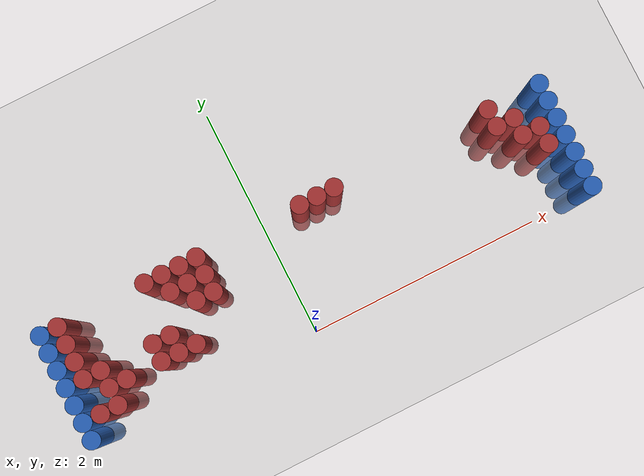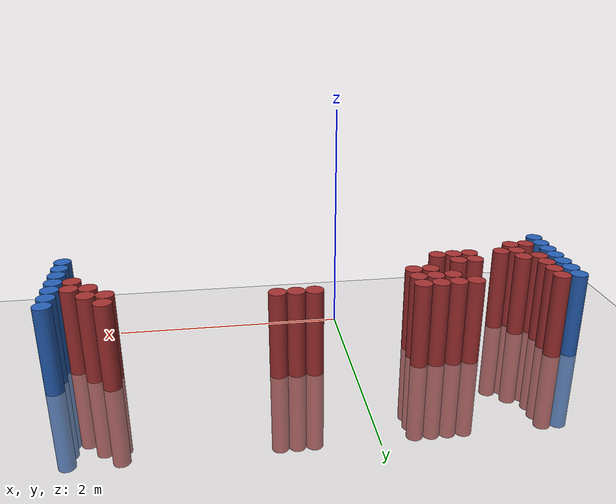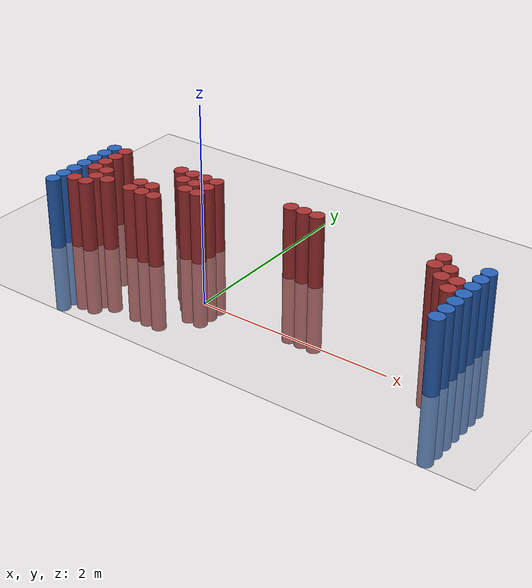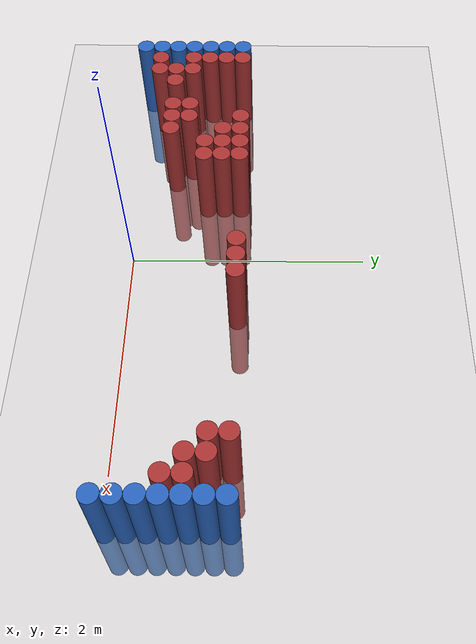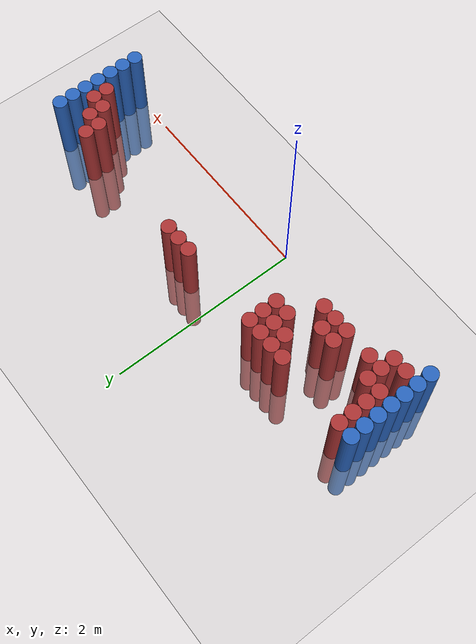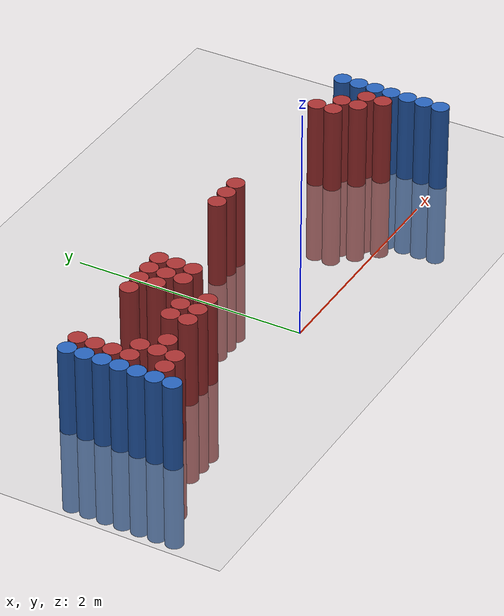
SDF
<sdf version="1.6">
 <world name="default">
  <model name="ground_plane">
   <static>1</static>
   <link name="link">
    <collision name="collision">
     <geometry><plane><normal>0 0 1</normal><size>100 100</size></plane></geometry>
     <surface><friction><ode><mu>100</mu><mu2>50</mu2></ode></friction></surface>
    </collision>
    <visual name="visual">
     <cast_shadows>0</cast_shadows>
     <geometry><plane><normal>0 0 1</normal><size>100 100</size></plane></geometry>
     <material>
      <script><uri>file://media/materials/scripts/gazebo.material</uri><name>Gazebo/Grey</name></script>
     </material>
    </visual>
   </link>
  </model>
  <model name="unit_cylinder_94">
   <static>1</static>
   <pose>2.425000 0.025000 0.000000 0.000000 0.000000 0.000000</pose>
   <link name="link">
    <inertial>
     <mass>1</mass>
     <inertia><ixx>0.145833</ixx><ixy>0</ixy><ixz>0</ixz><iyy>0.145833</iyy><iyz>0</iyz><izz>0.125</izz></inertia>
    </inertial>
    <collision name="collision">
     <geometry><cylinder><radius>0.075000</radius><length>1.5</length></cylinder></geometry>
    </collision>
    <visual name="visual">
     <geometry><cylinder><radius>0.075000</radius><length>1.5</length></cylinder></geometry>
     <material>
      <ambient>0.152000 0.379000 0.720000 1</ambient>
      <diffuse>0.152000 0.379000 0.720000 1</diffuse>
     </material>
     <material>
      <script><name>Gazebo/Grey</name><uri>file://media/materials/scripts/gazebo.material</uri></script>
     </material>
    </visual>
   </link>
  </model>
  <model name="unit_cylinder_95">
   <static>1</static>
   <pose>-1.925000 0.025000 0.000000 0.000000 0.000000 0.000000</pose>
   <link name="link">
    <inertial>
     <mass>1</mass>
     <inertia><ixx>0.145833</ixx><ixy>0</ixy><ixz>0</ixz><iyy>0.145833</iyy><iyz>0</iyz><izz>0.125</izz></inertia>
    </inertial>
    <collision name="collision">
     <geometry><cylinder><radius>0.075000</radius><length>1.5</length></cylinder></geometry>
    </collision>
    <visual name="visual">
     <geometry><cylinder><radius>0.075000</radius><length>1.5</length></cylinder></geometry>
     <material>
      <ambient>0.152000 0.379000 0.720000 1</ambient>
      <diffuse>0.152000 0.379000 0.720000 1</diffuse>
     </material>
     <material>
      <script><name>Gazebo/Grey</name><uri>file://media/materials/scripts/gazebo.material</uri></script>
     </material>
    </visual>
   </link>
  </model>
  <model name="unit_cylinder_96">
   <static>1</static>
   <pose>-1.925000 0.175000 0.000000 0.000000 0.000000 0.000000</pose>
   <link name="link">
    <inertial>
     <mass>1</mass>
     <inertia><ixx>0.145833</ixx><ixy>0</ixy><ixz>0</ixz><iyy>0.145833</iyy><iyz>0</iyz><izz>0.125</izz></inertia>
    </inertial>
    <collision name="collision">
     <geometry><cylinder><radius>0.075000</radius><length>1.5</length></cylinder></geometry>
    </collision>
    <visual name="visual">
     <geometry><cylinder><radius>0.075000</radius><length>1.5</length></cylinder></geometry>
     <material>
      <ambient>0.152000 0.379000 0.720000 1</ambient>
      <diffuse>0.152000 0.379000 0.720000 1</diffuse>
     </material>
     <material>
      <script><name>Gazebo/Grey</name><uri>file://media/materials/scripts/gazebo.material</uri></script>
     </material>
    </visual>
   </link>
  </model>
  <model name="unit_cylinder_97">
   <static>1</static>
   <pose>-1.925000 0.325000 0.000000 0.000000 0.000000 0.000000</pose>
   <link name="link">
    <inertial>
     <mass>1</mass>
     <inertia><ixx>0.145833</ixx><ixy>0</ixy><ixz>0</ixz><iyy>0.145833</iyy><iyz>0</iyz><izz>0.125</izz></inertia>
    </inertial>
    <collision name="collision">
     <geometry><cylinder><radius>0.075000</radius><length>1.5</length></cylinder></geometry>
    </collision>
    <visual name="visual">
     <geometry><cylinder><radius>0.075000</radius><length>1.5</length></cylinder></geometry>
     <material>
      <ambient>0.152000 0.379000 0.720000 1</ambient>
      <diffuse>0.152000 0.379000 0.720000 1</diffuse>
     </material>
     <material>
      <script><name>Gazebo/Grey</name><uri>file://media/materials/scripts/gazebo.material</uri></script>
     </material>
    </visual>
   </link>
  </model>
  <model name="unit_cylinder_98">
   <static>1</static>
   <pose>-1.925000 0.475000 0.000000 0.000000 0.000000 0.000000</pose>
   <link name="link">
    <inertial>
     <mass>1</mass>
     <inertia><ixx>0.145833</ixx><ixy>0</ixy><ixz>0</ixz><iyy>0.145833</iyy><iyz>0</iyz><izz>0.125</izz></inertia>
    </inertial>
    <collision name="collision">
     <geometry><cylinder><radius>0.075000</radius><length>1.5</length></cylinder></geometry>
    </collision>
    <visual name="visual">
     <geometry><cylinder><radius>0.075000</radius><length>1.5</length></cylinder></geometry>
     <material>
      <ambient>0.152000 0.379000 0.720000 1</ambient>
      <diffuse>0.152000 0.379000 0.720000 1</diffuse>
     </material>
     <material>
      <script><name>Gazebo/Grey</name><uri>file://media/materials/scripts/gazebo.material</uri></script>
     </material>
    </visual>
   </link>
  </model>
  <model name="unit_cylinder_99">
   <static>1</static>
   <pose>-1.925000 0.625000 0.000000 0.000000 0.000000 0.000000</pose>
   <link name="link">
    <inertial>
     <mass>1</mass>
     <inertia><ixx>0.145833</ixx><ixy>0</ixy><ixz>0</ixz><iyy>0.145833</iyy><iyz>0</iyz><izz>0.125</izz></inertia>
    </inertial>
    <collision name="collision">
     <geometry><cylinder><radius>0.075000</radius><length>1.5</length></cylinder></geometry>
    </collision>
    <visual name="visual">
     <geometry><cylinder><radius>0.075000</radius><length>1.5</length></cylinder></geometry>
     <material>
      <ambient>0.152000 0.379000 0.720000 1</ambient>
      <diffuse>0.152000 0.379000 0.720000 1</diffuse>
     </material>
     <material>
      <script><name>Gazebo/Grey</name><uri>file://media/materials/scripts/gazebo.material</uri></script>
     </material>
    </visual>
   </link>
  </model>
  <model name="unit_cylinder_100">
   <static>1</static>
   <pose>-1.925000 0.775000 0.000000 0.000000 0.000000 0.000000</pose>
   <link name="link">
    <inertial>
     <mass>1</mass>
     <inertia><ixx>0.145833</ixx><ixy>0</ixy><ixz>0</ixz><iyy>0.145833</iyy><iyz>0</iyz><izz>0.125</izz></inertia>
    </inertial>
    <collision name="collision">
     <geometry><cylinder><radius>0.075000</radius><length>1.5</length></cylinder></geometry>
    </collision>
    <visual name="visual">
     <geometry><cylinder><radius>0.075000</radius><length>1.5</length></cylinder></geometry>
     <material>
      <ambient>0.152000 0.379000 0.720000 1</ambient>
      <diffuse>0.152000 0.379000 0.720000 1</diffuse>
     </material>
     <material>
      <script><name>Gazebo/Grey</name><uri>file://media/materials/scripts/gazebo.material</uri></script>
     </material>
    </visual>
   </link>
  </model>
  <model name="unit_cylinder_101">
   <static>1</static>
   <pose>-1.925000 0.925000 0.000000 0.000000 0.000000 0.000000</pose>
   <link name="link">
    <inertial>
     <mass>1</mass>
     <inertia><ixx>0.145833</ixx><ixy>0</ixy><ixz>0</ixz><iyy>0.145833</iyy><iyz>0</iyz><izz>0.125</izz></inertia>
    </inertial>
    <collision name="collision">
     <geometry><cylinder><radius>0.075000</radius><length>1.5</length></cylinder></geometry>
    </collision>
    <visual name="visual">
     <geometry><cylinder><radius>0.075000</radius><length>1.5</length></cylinder></geometry>
     <material>
      <ambient>0.152000 0.379000 0.720000 1</ambient>
      <diffuse>0.152000 0.379000 0.720000 1</diffuse>
     </material>
     <material>
      <script><name>Gazebo/Grey</name><uri>file://media/materials/scripts/gazebo.material</uri></script>
     </material>
    </visual>
   </link>
  </model>
  <model name="unit_cylinder_126">
   <static>1</static>
   <pose>-1.775000 0.175000 0.000000 0.000000 0.000000 0.000000</pose>
   <link name="link">
    <inertial>
     <mass>1</mass>
     <inertia><ixx>0.145833</ixx><ixy>0</ixy><ixz>0</ixz><iyy>0.145833</iyy><iyz>0</iyz><izz>0.125</izz></inertia>
    </inertial>
    <collision name="collision">
     <geometry><cylinder><radius>0.075000</radius><length>1.5</length></cylinder></geometry>
    </collision>
    <visual name="visual">
     <geometry><cylinder><radius>0.075000</radius><length>1.5</length></cylinder></geometry>
     <material>
      <ambient>0.648000 0.192000 0.192000 1</ambient>
      <diffuse>0.648000 0.192000 0.192000 1</diffuse>
     </material>
     <material>
      <script><name>Gazebo/Grey</name><uri>file://media/materials/scripts/gazebo.material</uri></script>
     </material>
    </visual>
   </link>
  </model>
  <model name="unit_cylinder_127">
   <static>1</static>
   <pose>-1.775000 0.475000 0.000000 0.000000 0.000000 0.000000</pose>
   <link name="link">
    <inertial>
     <mass>1</mass>
     <inertia><ixx>0.145833</ixx><ixy>0</ixy><ixz>0</ixz><iyy>0.145833</iyy><iyz>0</iyz><izz>0.125</izz></inertia>
    </inertial>
    <collision name="collision">
     <geometry><cylinder><radius>0.075000</radius><length>1.5</length></cylinder></geometry>
    </collision>
    <visual name="visual">
     <geometry><cylinder><radius>0.075000</radius><length>1.5</length></cylinder></geometry>
     <material>
      <ambient>0.648000 0.192000 0.192000 1</ambient>
      <diffuse>0.648000 0.192000 0.192000 1</diffuse>
     </material>
     <material>
      <script><name>Gazebo/Grey</name><uri>file://media/materials/scripts/gazebo.material</uri></script>
     </material>
    </visual>
   </link>
  </model>
  <model name="unit_cylinder_128">
   <static>1</static>
   <pose>-1.775000 0.625000 0.000000 0.000000 0.000000 0.000000</pose>
   <link name="link">
    <inertial>
     <mass>1</mass>
     <inertia><ixx>0.145833</ixx><ixy>0</ixy><ixz>0</ixz><iyy>0.145833</iyy><iyz>0</iyz><izz>0.125</izz></inertia>
    </inertial>
    <collision name="collision">
     <geometry><cylinder><radius>0.075000</radius><length>1.5</length></cylinder></geometry>
    </collision>
    <visual name="visual">
     <geometry><cylinder><radius>0.075000</radius><length>1.5</length></cylinder></geometry>
     <material>
      <ambient>0.648000 0.192000 0.192000 1</ambient>
      <diffuse>0.648000 0.192000 0.192000 1</diffuse>
     </material>
     <material>
      <script><name>Gazebo/Grey</name><uri>file://media/materials/scripts/gazebo.material</uri></script>
     </material>
    </visual>
   </link>
  </model>
  <model name="unit_cylinder_129">
   <static>1</static>
   <pose>-1.775000 0.775000 0.000000 0.000000 0.000000 0.000000</pose>
   <link name="link">
    <inertial>
     <mass>1</mass>
     <inertia><ixx>0.145833</ixx><ixy>0</ixy><ixz>0</ixz><iyy>0.145833</iyy><iyz>0</iyz><izz>0.125</izz></inertia>
    </inertial>
    <collision name="collision">
     <geometry><cylinder><radius>0.075000</radius><length>1.5</length></cylinder></geometry>
    </collision>
    <visual name="visual">
     <geometry><cylinder><radius>0.075000</radius><length>1.5</length></cylinder></geometry>
     <material>
      <ambient>0.648000 0.192000 0.192000 1</ambient>
      <diffuse>0.648000 0.192000 0.192000 1</diffuse>
     </material>
     <material>
      <script><name>Gazebo/Grey</name><uri>file://media/materials/scripts/gazebo.material</uri></script>
     </material>
    </visual>
   </link>
  </model>
  <model name="unit_cylinder_130">
   <static>1</static>
   <pose>-1.775000 0.925000 0.000000 0.000000 0.000000 0.000000</pose>
   <link name="link">
    <inertial>
     <mass>1</mass>
     <inertia><ixx>0.145833</ixx><ixy>0</ixy><ixz>0</ixz><iyy>0.145833</iyy><iyz>0</iyz><izz>0.125</izz></inertia>
    </inertial>
    <collision name="collision">
     <geometry><cylinder><radius>0.075000</radius><length>1.5</length></cylinder></geometry>
    </collision>
    <visual name="visual">
     <geometry><cylinder><radius>0.075000</radius><length>1.5</length></cylinder></geometry>
     <material>
      <ambient>0.648000 0.192000 0.192000 1</ambient>
      <diffuse>0.648000 0.192000 0.192000 1</diffuse>
     </material>
     <material>
      <script><name>Gazebo/Grey</name><uri>file://media/materials/scripts/gazebo.material</uri></script>
     </material>
    </visual>
   </link>
  </model>
  <model name="unit_cylinder_143">
   <static>1</static>
   <pose>-1.625000 0.175000 0.000000 0.000000 0.000000 0.000000</pose>
   <link name="link">
    <inertial>
     <mass>1</mass>
     <inertia><ixx>0.145833</ixx><ixy>0</ixy><ixz>0</ixz><iyy>0.145833</iyy><iyz>0</iyz><izz>0.125</izz></inertia>
    </inertial>
    <collision name="collision">
     <geometry><cylinder><radius>0.075000</radius><length>1.5</length></cylinder></geometry>
    </collision>
    <visual name="visual">
     <geometry><cylinder><radius>0.075000</radius><length>1.5</length></cylinder></geometry>
     <material>
      <ambient>0.648000 0.192000 0.192000 1</ambient>
      <diffuse>0.648000 0.192000 0.192000 1</diffuse>
     </material>
     <material>
      <script><name>Gazebo/Grey</name><uri>file://media/materials/scripts/gazebo.material</uri></script>
     </material>
    </visual>
   </link>
  </model>
  <model name="unit_cylinder_144">
   <static>1</static>
   <pose>-1.625000 0.325000 0.000000 0.000000 0.000000 0.000000</pose>
   <link name="link">
    <inertial>
     <mass>1</mass>
     <inertia><ixx>0.145833</ixx><ixy>0</ixy><ixz>0</ixz><iyy>0.145833</iyy><iyz>0</iyz><izz>0.125</izz></inertia>
    </inertial>
    <collision name="collision">
     <geometry><cylinder><radius>0.075000</radius><length>1.5</length></cylinder></geometry>
    </collision>
    <visual name="visual">
     <geometry><cylinder><radius>0.075000</radius><length>1.5</length></cylinder></geometry>
     <material>
      <ambient>0.648000 0.192000 0.192000 1</ambient>
      <diffuse>0.648000 0.192000 0.192000 1</diffuse>
     </material>
     <material>
      <script><name>Gazebo/Grey</name><uri>file://media/materials/scripts/gazebo.material</uri></script>
     </material>
    </visual>
   </link>
  </model>
  <model name="unit_cylinder_145">
   <static>1</static>
   <pose>-1.625000 0.475000 0.000000 0.000000 0.000000 0.000000</pose>
   <link name="link">
    <inertial>
     <mass>1</mass>
     <inertia><ixx>0.145833</ixx><ixy>0</ixy><ixz>0</ixz><iyy>0.145833</iyy><iyz>0</iyz><izz>0.125</izz></inertia>
    </inertial>
    <collision name="collision">
     <geometry><cylinder><radius>0.075000</radius><length>1.5</length></cylinder></geometry>
    </collision>
    <visual name="visual">
     <geometry><cylinder><radius>0.075000</radius><length>1.5</length></cylinder></geometry>
     <material>
      <ambient>0.648000 0.192000 0.192000 1</ambient>
      <diffuse>0.648000 0.192000 0.192000 1</diffuse>
     </material>
     <material>
      <script><name>Gazebo/Grey</name><uri>file://media/materials/scripts/gazebo.material</uri></script>
     </material>
    </visual>
   </link>
  </model>
  <model name="unit_cylinder_152">
   <static>1</static>
   <pose>-1.475000 0.325000 0.000000 0.000000 0.000000 0.000000</pose>
   <link name="link">
    <inertial>
     <mass>1</mass>
     <inertia><ixx>0.145833</ixx><ixy>0</ixy><ixz>0</ixz><iyy>0.145833</iyy><iyz>0</iyz><izz>0.125</izz></inertia>
    </inertial>
    <collision name="collision">
     <geometry><cylinder><radius>0.075000</radius><length>1.5</length></cylinder></geometry>
    </collision>
    <visual name="visual">
     <geometry><cylinder><radius>0.075000</radius><length>1.5</length></cylinder></geometry>
     <material>
      <ambient>0.648000 0.192000 0.192000 1</ambient>
      <diffuse>0.648000 0.192000 0.192000 1</diffuse>
     </material>
     <material>
      <script><name>Gazebo/Grey</name><uri>file://media/materials/scripts/gazebo.material</uri></script>
     </material>
    </visual>
   </link>
  </model>
  <model name="unit_cylinder_157">
   <static>1</static>
   <pose>-1.175000 0.325000 0.000000 0.000000 0.000000 0.000000</pose>
   <link name="link">
    <inertial>
     <mass>1</mass>
     <inertia><ixx>0.145833</ixx><ixy>0</ixy><ixz>0</ixz><iyy>0.145833</iyy><iyz>0</iyz><izz>0.125</izz></inertia>
    </inertial>
    <collision name="collision">
     <geometry><cylinder><radius>0.075000</radius><length>1.5</length></cylinder></geometry>
    </collision>
    <visual name="visual">
     <geometry><cylinder><radius>0.075000</radius><length>1.5</length></cylinder></geometry>
     <material>
      <ambient>0.648000 0.192000 0.192000 1</ambient>
      <diffuse>0.648000 0.192000 0.192000 1</diffuse>
     </material>
     <material>
      <script><name>Gazebo/Grey</name><uri>file://media/materials/scripts/gazebo.material</uri></script>
     </material>
    </visual>
   </link>
  </model>
  <model name="unit_cylinder_158">
   <static>1</static>
   <pose>-1.175000 0.475000 0.000000 0.000000 0.000000 0.000000</pose>
   <link name="link">
    <inertial>
     <mass>1</mass>
     <inertia><ixx>0.145833</ixx><ixy>0</ixy><ixz>0</ixz><iyy>0.145833</iyy><iyz>0</iyz><izz>0.125</izz></inertia>
    </inertial>
    <collision name="collision">
     <geometry><cylinder><radius>0.075000</radius><length>1.5</length></cylinder></geometry>
    </collision>
    <visual name="visual">
     <geometry><cylinder><radius>0.075000</radius><length>1.5</length></cylinder></geometry>
     <material>
      <ambient>0.648000 0.192000 0.192000 1</ambient>
      <diffuse>0.648000 0.192000 0.192000 1</diffuse>
     </material>
     <material>
      <script><name>Gazebo/Grey</name><uri>file://media/materials/scripts/gazebo.material</uri></script>
     </material>
    </visual>
   </link>
  </model>
  <model name="unit_cylinder_161">
   <static>1</static>
   <pose>-1.025000 0.325000 0.000000 0.000000 0.000000 0.000000</pose>
   <link name="link">
    <inertial>
     <mass>1</mass>
     <inertia><ixx>0.145833</ixx><ixy>0</ixy><ixz>0</ixz><iyy>0.145833</iyy><iyz>0</iyz><izz>0.125</izz></inertia>
    </inertial>
    <collision name="collision">
     <geometry><cylinder><radius>0.075000</radius><length>1.5</length></cylinder></geometry>
    </collision>
    <visual name="visual">
     <geometry><cylinder><radius>0.075000</radius><length>1.5</length></cylinder></geometry>
     <material>
      <ambient>0.648000 0.192000 0.192000 1</ambient>
      <diffuse>0.648000 0.192000 0.192000 1</diffuse>
     </material>
     <material>
      <script><name>Gazebo/Grey</name><uri>file://media/materials/scripts/gazebo.material</uri></script>
     </material>
    </visual>
   </link>
  </model>
  <model name="unit_cylinder_162">
   <static>1</static>
   <pose>-1.025000 0.475000 0.000000 0.000000 0.000000 0.000000</pose>
   <link name="link">
    <inertial>
     <mass>1</mass>
     <inertia><ixx>0.145833</ixx><ixy>0</ixy><ixz>0</ixz><iyy>0.145833</iyy><iyz>0</iyz><izz>0.125</izz></inertia>
    </inertial>
    <collision name="collision">
     <geometry><cylinder><radius>0.075000</radius><length>1.5</length></cylinder></geometry>
    </collision>
    <visual name="visual">
     <geometry><cylinder><radius>0.075000</radius><length>1.5</length></cylinder></geometry>
     <material>
      <ambient>0.648000 0.192000 0.192000 1</ambient>
      <diffuse>0.648000 0.192000 0.192000 1</diffuse>
     </material>
     <material>
      <script><name>Gazebo/Grey</name><uri>file://media/materials/scripts/gazebo.material</uri></script>
     </material>
    </visual>
   </link>
  </model>
  <model name="unit_cylinder_163">
   <static>1</static>
   <pose>-1.025000 0.925000 0.000000 0.000000 0.000000 0.000000</pose>
   <link name="link">
    <inertial>
     <mass>1</mass>
     <inertia><ixx>0.145833</ixx><ixy>0</ixy><ixz>0</ixz><iyy>0.145833</iyy><iyz>0</iyz><izz>0.125</izz></inertia>
    </inertial>
    <collision name="collision">
     <geometry><cylinder><radius>0.075000</radius><length>1.5</length></cylinder></geometry>
    </collision>
    <visual name="visual">
     <geometry><cylinder><radius>0.075000</radius><length>1.5</length></cylinder></geometry>
     <material>
      <ambient>0.648000 0.192000 0.192000 1</ambient>
      <diffuse>0.648000 0.192000 0.192000 1</diffuse>
     </material>
     <material>
      <script><name>Gazebo/Grey</name><uri>file://media/materials/scripts/gazebo.material</uri></script>
     </material>
    </visual>
   </link>
  </model>
  <model name="unit_cylinder_170">
   <static>1</static>
   <pose>-0.875000 0.325000 0.000000 0.000000 0.000000 0.000000</pose>
   <link name="link">
    <inertial>
     <mass>1</mass>
     <inertia><ixx>0.145833</ixx><ixy>0</ixy><ixz>0</ixz><iyy>0.145833</iyy><iyz>0</iyz><izz>0.125</izz></inertia>
    </inertial>
    <collision name="collision">
     <geometry><cylinder><radius>0.075000</radius><length>1.5</length></cylinder></geometry>
    </collision>
    <visual name="visual">
     <geometry><cylinder><radius>0.075000</radius><length>1.5</length></cylinder></geometry>
     <material>
      <ambient>0.648000 0.192000 0.192000 1</ambient>
      <diffuse>0.648000 0.192000 0.192000 1</diffuse>
     </material>
     <material>
      <script><name>Gazebo/Grey</name><uri>file://media/materials/scripts/gazebo.material</uri></script>
     </material>
    </visual>
   </link>
  </model>
  <model name="unit_cylinder_171">
   <static>1</static>
   <pose>-0.875000 0.775000 0.000000 0.000000 0.000000 0.000000</pose>
   <link name="link">
    <inertial>
     <mass>1</mass>
     <inertia><ixx>0.145833</ixx><ixy>0</ixy><ixz>0</ixz><iyy>0.145833</iyy><iyz>0</iyz><izz>0.125</izz></inertia>
    </inertial>
    <collision name="collision">
     <geometry><cylinder><radius>0.075000</radius><length>1.5</length></cylinder></geometry>
    </collision>
    <visual name="visual">
     <geometry><cylinder><radius>0.075000</radius><length>1.5</length></cylinder></geometry>
     <material>
      <ambient>0.648000 0.192000 0.192000 1</ambient>
      <diffuse>0.648000 0.192000 0.192000 1</diffuse>
     </material>
     <material>
      <script><name>Gazebo/Grey</name><uri>file://media/materials/scripts/gazebo.material</uri></script>
     </material>
    </visual>
   </link>
  </model>
  <model name="unit_cylinder_172">
   <static>1</static>
   <pose>-0.875000 0.925000 0.000000 0.000000 0.000000 0.000000</pose>
   <link name="link">
    <inertial>
     <mass>1</mass>
     <inertia><ixx>0.145833</ixx><ixy>0</ixy><ixz>0</ixz><iyy>0.145833</iyy><iyz>0</iyz><izz>0.125</izz></inertia>
    </inertial>
    <collision name="collision">
     <geometry><cylinder><radius>0.075000</radius><length>1.5</length></cylinder></geometry>
    </collision>
    <visual name="visual">
     <geometry><cylinder><radius>0.075000</radius><length>1.5</length></cylinder></geometry>
     <material>
      <ambient>0.648000 0.192000 0.192000 1</ambient>
      <diffuse>0.648000 0.192000 0.192000 1</diffuse>
     </material>
     <material>
      <script><name>Gazebo/Grey</name><uri>file://media/materials/scripts/gazebo.material</uri></script>
     </material>
    </visual>
   </link>
  </model>
  <model name="unit_cylinder_176">
   <static>1</static>
   <pose>-0.725000 0.625000 0.000000 0.000000 0.000000 0.000000</pose>
   <link name="link">
    <inertial>
     <mass>1</mass>
     <inertia><ixx>0.145833</ixx><ixy>0</ixy><ixz>0</ixz><iyy>0.145833</iyy><iyz>0</iyz><izz>0.125</izz></inertia>
    </inertial>
    <collision name="collision">
     <geometry><cylinder><radius>0.075000</radius><length>1.5</length></cylinder></geometry>
    </collision>
    <visual name="visual">
     <geometry><cylinder><radius>0.075000</radius><length>1.5</length></cylinder></geometry>
     <material>
      <ambient>0.648000 0.192000 0.192000 1</ambient>
      <diffuse>0.648000 0.192000 0.192000 1</diffuse>
     </material>
     <material>
      <script><name>Gazebo/Grey</name><uri>file://media/materials/scripts/gazebo.material</uri></script>
     </material>
    </visual>
   </link>
  </model>
  <model name="unit_cylinder_177">
   <static>1</static>
   <pose>-0.725000 0.775000 0.000000 0.000000 0.000000 0.000000</pose>
   <link name="link">
    <inertial>
     <mass>1</mass>
     <inertia><ixx>0.145833</ixx><ixy>0</ixy><ixz>0</ixz><iyy>0.145833</iyy><iyz>0</iyz><izz>0.125</izz></inertia>
    </inertial>
    <collision name="collision">
     <geometry><cylinder><radius>0.075000</radius><length>1.5</length></cylinder></geometry>
    </collision>
    <visual name="visual">
     <geometry><cylinder><radius>0.075000</radius><length>1.5</length></cylinder></geometry>
     <material>
      <ambient>0.648000 0.192000 0.192000 1</ambient>
      <diffuse>0.648000 0.192000 0.192000 1</diffuse>
     </material>
     <material>
      <script><name>Gazebo/Grey</name><uri>file://media/materials/scripts/gazebo.material</uri></script>
     </material>
    </visual>
   </link>
  </model>
  <model name="unit_cylinder_178">
   <static>1</static>
   <pose>-0.725000 0.925000 0.000000 0.000000 0.000000 0.000000</pose>
   <link name="link">
    <inertial>
     <mass>1</mass>
     <inertia><ixx>0.145833</ixx><ixy>0</ixy><ixz>0</ixz><iyy>0.145833</iyy><iyz>0</iyz><izz>0.125</izz></inertia>
    </inertial>
    <collision name="collision">
     <geometry><cylinder><radius>0.075000</radius><length>1.5</length></cylinder></geometry>
    </collision>
    <visual name="visual">
     <geometry><cylinder><radius>0.075000</radius><length>1.5</length></cylinder></geometry>
     <material>
      <ambient>0.648000 0.192000 0.192000 1</ambient>
      <diffuse>0.648000 0.192000 0.192000 1</diffuse>
     </material>
     <material>
      <script><name>Gazebo/Grey</name><uri>file://media/materials/scripts/gazebo.material</uri></script>
     </material>
    </visual>
   </link>
  </model>
  <model name="unit_cylinder_179">
   <static>1</static>
   <pose>-0.575000 0.625000 0.000000 0.000000 0.000000 0.000000</pose>
   <link name="link">
    <inertial>
     <mass>1</mass>
     <inertia><ixx>0.145833</ixx><ixy>0</ixy><ixz>0</ixz><iyy>0.145833</iyy><iyz>0</iyz><izz>0.125</izz></inertia>
    </inertial>
    <collision name="collision">
     <geometry><cylinder><radius>0.075000</radius><length>1.5</length></cylinder></geometry>
    </collision>
    <visual name="visual">
     <geometry><cylinder><radius>0.075000</radius><length>1.5</length></cylinder></geometry>
     <material>
      <ambient>0.648000 0.192000 0.192000 1</ambient>
      <diffuse>0.648000 0.192000 0.192000 1</diffuse>
     </material>
     <material>
      <script><name>Gazebo/Grey</name><uri>file://media/materials/scripts/gazebo.material</uri></script>
     </material>
    </visual>
   </link>
  </model>
  <model name="unit_cylinder_180">
   <static>1</static>
   <pose>-0.575000 0.775000 0.000000 0.000000 0.000000 0.000000</pose>
   <link name="link">
    <inertial>
     <mass>1</mass>
     <inertia><ixx>0.145833</ixx><ixy>0</ixy><ixz>0</ixz><iyy>0.145833</iyy><iyz>0</iyz><izz>0.125</izz></inertia>
    </inertial>
    <collision name="collision">
     <geometry><cylinder><radius>0.075000</radius><length>1.5</length></cylinder></geometry>
    </collision>
    <visual name="visual">
     <geometry><cylinder><radius>0.075000</radius><length>1.5</length></cylinder></geometry>
     <material>
      <ambient>0.648000 0.192000 0.192000 1</ambient>
      <diffuse>0.648000 0.192000 0.192000 1</diffuse>
     </material>
     <material>
      <script><name>Gazebo/Grey</name><uri>file://media/materials/scripts/gazebo.material</uri></script>
     </material>
    </visual>
   </link>
  </model>
  <model name="unit_cylinder_181">
   <static>1</static>
   <pose>-0.575000 0.925000 0.000000 0.000000 0.000000 0.000000</pose>
   <link name="link">
    <inertial>
     <mass>1</mass>
     <inertia><ixx>0.145833</ixx><ixy>0</ixy><ixz>0</ixz><iyy>0.145833</iyy><iyz>0</iyz><izz>0.125</izz></inertia>
    </inertial>
    <collision name="collision">
     <geometry><cylinder><radius>0.075000</radius><length>1.5</length></cylinder></geometry>
    </collision>
    <visual name="visual">
     <geometry><cylinder><radius>0.075000</radius><length>1.5</length></cylinder></geometry>
     <material>
      <ambient>0.648000 0.192000 0.192000 1</ambient>
      <diffuse>0.648000 0.192000 0.192000 1</diffuse>
     </material>
     <material>
      <script><name>Gazebo/Grey</name><uri>file://media/materials/scripts/gazebo.material</uri></script>
     </material>
    </visual>
   </link>
  </model>
  <model name="unit_cylinder_203">
   <static>1</static>
   <pose>0.325000 0.925000 0.000000 0.000000 0.000000 0.000000</pose>
   <link name="link">
    <inertial>
     <mass>1</mass>
     <inertia><ixx>0.145833</ixx><ixy>0</ixy><ixz>0</ixz><iyy>0.145833</iyy><iyz>0</iyz><izz>0.125</izz></inertia>
    </inertial>
    <collision name="collision">
     <geometry><cylinder><radius>0.075000</radius><length>1.5</length></cylinder></geometry>
    </collision>
    <visual name="visual">
     <geometry><cylinder><radius>0.075000</radius><length>1.5</length></cylinder></geometry>
     <material>
      <ambient>0.648000 0.192000 0.192000 1</ambient>
      <diffuse>0.648000 0.192000 0.192000 1</diffuse>
     </material>
     <material>
      <script><name>Gazebo/Grey</name><uri>file://media/materials/scripts/gazebo.material</uri></script>
     </material>
    </visual>
   </link>
  </model>
  <model name="unit_cylinder_207">
   <static>1</static>
   <pose>0.475000 0.925000 0.000000 0.000000 0.000000 0.000000</pose>
   <link name="link">
    <inertial>
     <mass>1</mass>
     <inertia><ixx>0.145833</ixx><ixy>0</ixy><ixz>0</ixz><iyy>0.145833</iyy><iyz>0</iyz><izz>0.125</izz></inertia>
    </inertial>
    <collision name="collision">
     <geometry><cylinder><radius>0.075000</radius><length>1.5</length></cylinder></geometry>
    </collision>
    <visual name="visual">
     <geometry><cylinder><radius>0.075000</radius><length>1.5</length></cylinder></geometry>
     <material>
      <ambient>0.648000 0.192000 0.192000 1</ambient>
      <diffuse>0.648000 0.192000 0.192000 1</diffuse>
     </material>
     <material>
      <script><name>Gazebo/Grey</name><uri>file://media/materials/scripts/gazebo.material</uri></script>
     </material>
    </visual>
   </link>
  </model>
  <model name="unit_cylinder_212">
   <static>1</static>
   <pose>0.625000 0.925000 0.000000 0.000000 0.000000 0.000000</pose>
   <link name="link">
    <inertial>
     <mass>1</mass>
     <inertia><ixx>0.145833</ixx><ixy>0</ixy><ixz>0</ixz><iyy>0.145833</iyy><iyz>0</iyz><izz>0.125</izz></inertia>
    </inertial>
    <collision name="collision">
     <geometry><cylinder><radius>0.075000</radius><length>1.5</length></cylinder></geometry>
    </collision>
    <visual name="visual">
     <geometry><cylinder><radius>0.075000</radius><length>1.5</length></cylinder></geometry>
     <material>
      <ambient>0.648000 0.192000 0.192000 1</ambient>
      <diffuse>0.648000 0.192000 0.192000 1</diffuse>
     </material>
     <material>
      <script><name>Gazebo/Grey</name><uri>file://media/materials/scripts/gazebo.material</uri></script>
     </material>
    </visual>
   </link>
  </model>
  <model name="unit_cylinder_219">
   <static>1</static>
   <pose>1.975000 0.775000 0.000000 0.000000 0.000000 0.000000</pose>
   <link name="link">
    <inertial>
     <mass>1</mass>
     <inertia><ixx>0.145833</ixx><ixy>0</ixy><ixz>0</ixz><iyy>0.145833</iyy><iyz>0</iyz><izz>0.125</izz></inertia>
    </inertial>
    <collision name="collision">
     <geometry><cylinder><radius>0.075000</radius><length>1.5</length></cylinder></geometry>
    </collision>
    <visual name="visual">
     <geometry><cylinder><radius>0.075000</radius><length>1.5</length></cylinder></geometry>
     <material>
      <ambient>0.648000 0.192000 0.192000 1</ambient>
      <diffuse>0.648000 0.192000 0.192000 1</diffuse>
     </material>
     <material>
      <script><name>Gazebo/Grey</name><uri>file://media/materials/scripts/gazebo.material</uri></script>
     </material>
    </visual>
   </link>
  </model>
  <model name="unit_cylinder_220">
   <static>1</static>
   <pose>1.975000 0.925000 0.000000 0.000000 0.000000 0.000000</pose>
   <link name="link">
    <inertial>
     <mass>1</mass>
     <inertia><ixx>0.145833</ixx><ixy>0</ixy><ixz>0</ixz><iyy>0.145833</iyy><iyz>0</iyz><izz>0.125</izz></inertia>
    </inertial>
    <collision name="collision">
     <geometry><cylinder><radius>0.075000</radius><length>1.5</length></cylinder></geometry>
    </collision>
    <visual name="visual">
     <geometry><cylinder><radius>0.075000</radius><length>1.5</length></cylinder></geometry>
     <material>
      <ambient>0.648000 0.192000 0.192000 1</ambient>
      <diffuse>0.648000 0.192000 0.192000 1</diffuse>
     </material>
     <material>
      <script><name>Gazebo/Grey</name><uri>file://media/materials/scripts/gazebo.material</uri></script>
     </material>
    </visual>
   </link>
  </model>
  <model name="unit_cylinder_226">
   <static>1</static>
   <pose>2.125000 0.625000 0.000000 0.000000 0.000000 0.000000</pose>
   <link name="link">
    <inertial>
     <mass>1</mass>
     <inertia><ixx>0.145833</ixx><ixy>0</ixy><ixz>0</ixz><iyy>0.145833</iyy><iyz>0</iyz><izz>0.125</izz></inertia>
    </inertial>
    <collision name="collision">
     <geometry><cylinder><radius>0.075000</radius><length>1.5</length></cylinder></geometry>
    </collision>
    <visual name="visual">
     <geometry><cylinder><radius>0.075000</radius><length>1.5</length></cylinder></geometry>
     <material>
      <ambient>0.648000 0.192000 0.192000 1</ambient>
      <diffuse>0.648000 0.192000 0.192000 1</diffuse>
     </material>
     <material>
      <script><name>Gazebo/Grey</name><uri>file://media/materials/scripts/gazebo.material</uri></script>
     </material>
    </visual>
   </link>
  </model>
  <model name="unit_cylinder_227">
   <static>1</static>
   <pose>2.125000 0.775000 0.000000 0.000000 0.000000 0.000000</pose>
   <link name="link">
    <inertial>
     <mass>1</mass>
     <inertia><ixx>0.145833</ixx><ixy>0</ixy><ixz>0</ixz><iyy>0.145833</iyy><iyz>0</iyz><izz>0.125</izz></inertia>
    </inertial>
    <collision name="collision">
     <geometry><cylinder><radius>0.075000</radius><length>1.5</length></cylinder></geometry>
    </collision>
    <visual name="visual">
     <geometry><cylinder><radius>0.075000</radius><length>1.5</length></cylinder></geometry>
     <material>
      <ambient>0.648000 0.192000 0.192000 1</ambient>
      <diffuse>0.648000 0.192000 0.192000 1</diffuse>
     </material>
     <material>
      <script><name>Gazebo/Grey</name><uri>file://media/materials/scripts/gazebo.material</uri></script>
     </material>
    </visual>
   </link>
  </model>
  <model name="unit_cylinder_235">
   <static>1</static>
   <pose>2.275000 0.475000 0.000000 0.000000 0.000000 0.000000</pose>
   <link name="link">
    <inertial>
     <mass>1</mass>
     <inertia><ixx>0.145833</ixx><ixy>0</ixy><ixz>0</ixz><iyy>0.145833</iyy><iyz>0</iyz><izz>0.125</izz></inertia>
    </inertial>
    <collision name="collision">
     <geometry><cylinder><radius>0.075000</radius><length>1.5</length></cylinder></geometry>
    </collision>
    <visual name="visual">
     <geometry><cylinder><radius>0.075000</radius><length>1.5</length></cylinder></geometry>
     <material>
      <ambient>0.648000 0.192000 0.192000 1</ambient>
      <diffuse>0.648000 0.192000 0.192000 1</diffuse>
     </material>
     <material>
      <script><name>Gazebo/Grey</name><uri>file://media/materials/scripts/gazebo.material</uri></script>
     </material>
    </visual>
   </link>
  </model>
  <model name="unit_cylinder_236">
   <static>1</static>
   <pose>2.275000 0.625000 0.000000 0.000000 0.000000 0.000000</pose>
   <link name="link">
    <inertial>
     <mass>1</mass>
     <inertia><ixx>0.145833</ixx><ixy>0</ixy><ixz>0</ixz><iyy>0.145833</iyy><iyz>0</iyz><izz>0.125</izz></inertia>
    </inertial>
    <collision name="collision">
     <geometry><cylinder><radius>0.075000</radius><length>1.5</length></cylinder></geometry>
    </collision>
    <visual name="visual">
     <geometry><cylinder><radius>0.075000</radius><length>1.5</length></cylinder></geometry>
     <material>
      <ambient>0.648000 0.192000 0.192000 1</ambient>
      <diffuse>0.648000 0.192000 0.192000 1</diffuse>
     </material>
     <material>
      <script><name>Gazebo/Grey</name><uri>file://media/materials/scripts/gazebo.material</uri></script>
     </material>
    </visual>
   </link>
  </model>
  <model name="unit_cylinder_250">
   <static>1</static>
   <pose>2.425000 0.175000 0.000000 0.000000 0.000000 0.000000</pose>
   <link name="link">
    <inertial>
     <mass>1</mass>
     <inertia><ixx>0.145833</ixx><ixy>0</ixy><ixz>0</ixz><iyy>0.145833</iyy><iyz>0</iyz><izz>0.125</izz></inertia>
    </inertial>
    <collision name="collision">
     <geometry><cylinder><radius>0.075000</radius><length>1.5</length></cylinder></geometry>
    </collision>
    <visual name="visual">
     <geometry><cylinder><radius>0.075000</radius><length>1.5</length></cylinder></geometry>
     <material>
      <ambient>0.152000 0.379000 0.720000 1</ambient>
      <diffuse>0.152000 0.379000 0.720000 1</diffuse>
     </material>
     <material>
      <script><name>Gazebo/Grey</name><uri>file://media/materials/scripts/gazebo.material</uri></script>
     </material>
    </visual>
   </link>
  </model>
  <model name="unit_cylinder_251">
   <static>1</static>
   <pose>2.425000 0.325000 0.000000 0.000000 0.000000 0.000000</pose>
   <link name="link">
    <inertial>
     <mass>1</mass>
     <inertia><ixx>0.145833</ixx><ixy>0</ixy><ixz>0</ixz><iyy>0.145833</iyy><iyz>0</iyz><izz>0.125</izz></inertia>
    </inertial>
    <collision name="collision">
     <geometry><cylinder><radius>0.075000</radius><length>1.5</length></cylinder></geometry>
    </collision>
    <visual name="visual">
     <geometry><cylinder><radius>0.075000</radius><length>1.5</length></cylinder></geometry>
     <material>
      <ambient>0.152000 0.379000 0.720000 1</ambient>
      <diffuse>0.152000 0.379000 0.720000 1</diffuse>
     </material>
     <material>
      <script><name>Gazebo/Grey</name><uri>file://media/materials/scripts/gazebo.material</uri></script>
     </material>
    </visual>
   </link>
  </model>
  <model name="unit_cylinder_252">
   <static>1</static>
   <pose>2.425000 0.475000 0.000000 0.000000 0.000000 0.000000</pose>
   <link name="link">
    <inertial>
     <mass>1</mass>
     <inertia><ixx>0.145833</ixx><ixy>0</ixy><ixz>0</ixz><iyy>0.145833</iyy><iyz>0</iyz><izz>0.125</izz></inertia>
    </inertial>
    <collision name="collision">
     <geometry><cylinder><radius>0.075000</radius><length>1.5</length></cylinder></geometry>
    </collision>
    <visual name="visual">
     <geometry><cylinder><radius>0.075000</radius><length>1.5</length></cylinder></geometry>
     <material>
      <ambient>0.152000 0.379000 0.720000 1</ambient>
      <diffuse>0.152000 0.379000 0.720000 1</diffuse>
     </material>
     <material>
      <script><name>Gazebo/Grey</name><uri>file://media/materials/scripts/gazebo.material</uri></script>
     </material>
    </visual>
   </link>
  </model>
  <model name="unit_cylinder_253">
   <static>1</static>
   <pose>2.425000 0.625000 0.000000 0.000000 0.000000 0.000000</pose>
   <link name="link">
    <inertial>
     <mass>1</mass>
     <inertia><ixx>0.145833</ixx><ixy>0</ixy><ixz>0</ixz><iyy>0.145833</iyy><iyz>0</iyz><izz>0.125</izz></inertia>
    </inertial>
    <collision name="collision">
     <geometry><cylinder><radius>0.075000</radius><length>1.5</length></cylinder></geometry>
    </collision>
    <visual name="visual">
     <geometry><cylinder><radius>0.075000</radius><length>1.5</length></cylinder></geometry>
     <material>
      <ambient>0.152000 0.379000 0.720000 1</ambient>
      <diffuse>0.152000 0.379000 0.720000 1</diffuse>
     </material>
     <material>
      <script><name>Gazebo/Grey</name><uri>file://media/materials/scripts/gazebo.material</uri></script>
     </material>
    </visual>
   </link>
  </model>
  <model name="unit_cylinder_254">
   <static>1</static>
   <pose>2.425000 0.775000 0.000000 0.000000 0.000000 0.000000</pose>
   <link name="link">
    <inertial>
     <mass>1</mass>
     <inertia><ixx>0.145833</ixx><ixy>0</ixy><ixz>0</ixz><iyy>0.145833</iyy><iyz>0</iyz><izz>0.125</izz></inertia>
    </inertial>
    <collision name="collision">
     <geometry><cylinder><radius>0.075000</radius><length>1.5</length></cylinder></geometry>
    </collision>
    <visual name="visual">
     <geometry><cylinder><radius>0.075000</radius><length>1.5</length></cylinder></geometry>
     <material>
      <ambient>0.152000 0.379000 0.720000 1</ambient>
      <diffuse>0.152000 0.379000 0.720000 1</diffuse>
     </material>
     <material>
      <script><name>Gazebo/Grey</name><uri>file://media/materials/scripts/gazebo.material</uri></script>
     </material>
    </visual>
   </link>
  </model>
  <model name="unit_cylinder_255">
   <static>1</static>
   <pose>2.425000 0.925000 0.000000 0.000000 0.000000 0.000000</pose>
   <link name="link">
    <inertial>
     <mass>1</mass>
     <inertia><ixx>0.145833</ixx><ixy>0</ixy><ixz>0</ixz><iyy>0.145833</iyy><iyz>0</iyz><izz>0.125</izz></inertia>
    </inertial>
    <collision name="collision">
     <geometry><cylinder><radius>0.075000</radius><length>1.5</length></cylinder></geometry>
    </collision>
    <visual name="visual">
     <geometry><cylinder><radius>0.075000</radius><length>1.5</length></cylinder></geometry>
     <material>
      <ambient>0.152000 0.379000 0.720000 1</ambient>
      <diffuse>0.152000 0.379000 0.720000 1</diffuse>
     </material>
     <material>
      <script><name>Gazebo/Grey</name><uri>file://media/materials/scripts/gazebo.material</uri></script>
     </material>
    </visual>
   </link>
  </model>
 </world>
</sdf>
